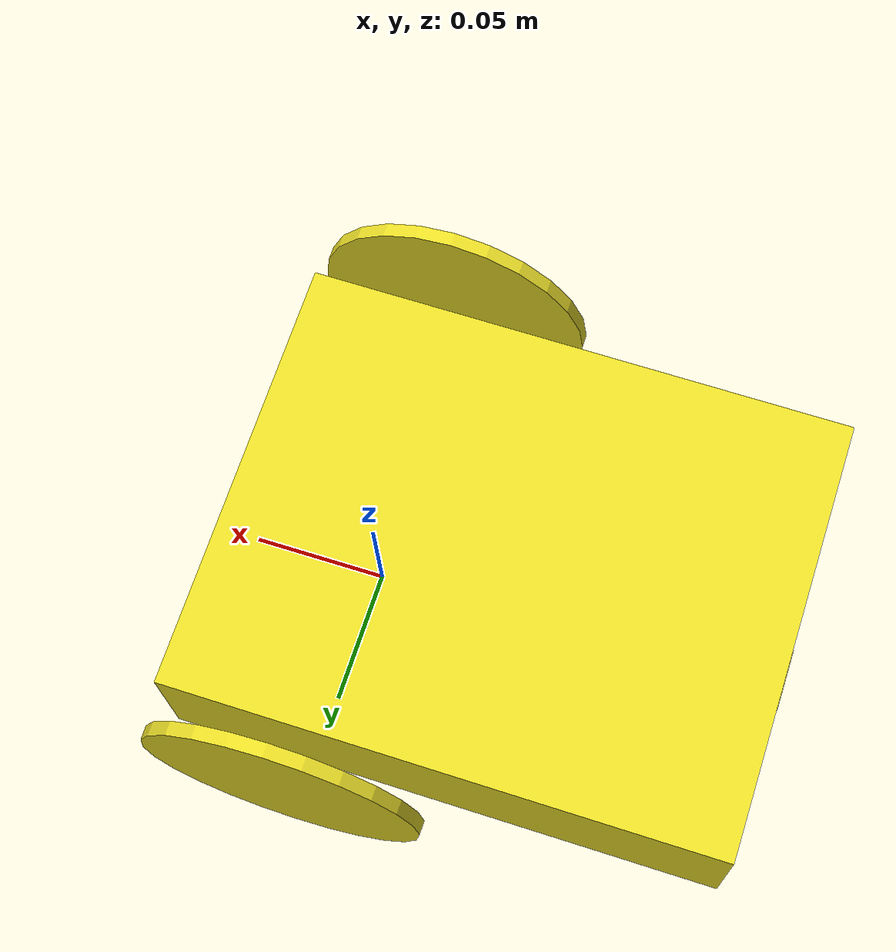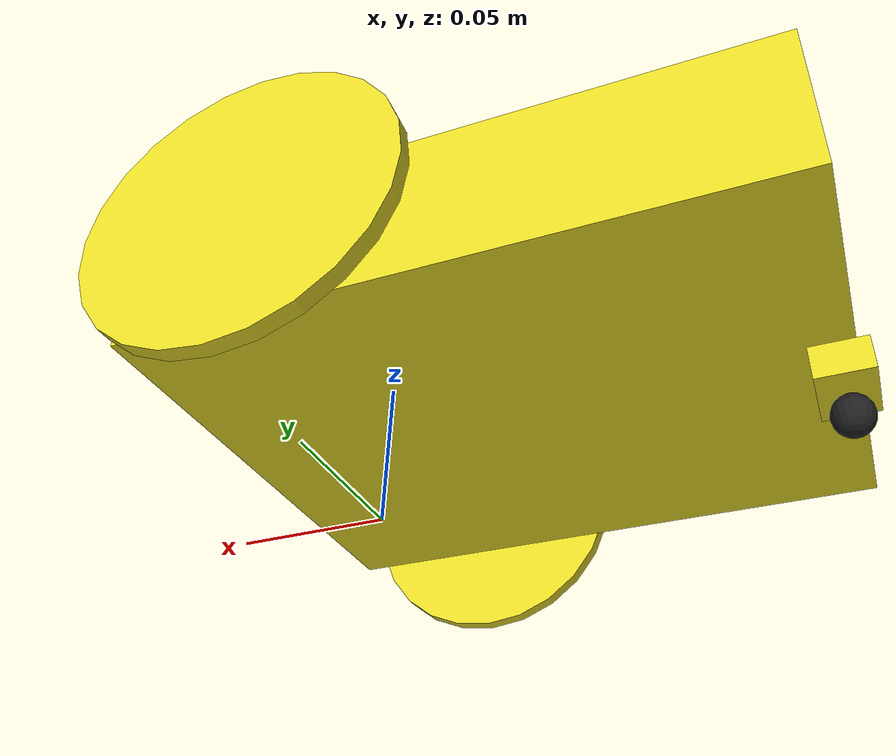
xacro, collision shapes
<?xml version="1.0"?>
<robot xmlns:xacro="http://www.ros.org/wiki/xacro" name="Puzzlebot_Hacker_Ed.">

<!-- files for gazebo costumization -->
<xacro:include filename="$(find puzzlebot_description)/urdf/hacker_ed/materials_hacker_ed.xacro" />
<xacro:include filename="$(find puzzlebot_description)/urdf/hacker_ed/parameters_hacker_ed_v1_3.xacro" />
<xacro:include filename="$(find puzzlebot_description)/urdf/hacker_ed/macros_hacker_ed.xacro" />
<xacro:include filename="$(find puzzlebot_description)/urdf/hacker_ed/puzzlebot_hacker_ed_v1_2.gazebo.xacro" />

<!--LINKS-->

<!-- Dummy link to fix robot chassis -->
    <link name="base_footprint">
    </link>

    <link name="base_link">
        <visual>
            <origin xyz="${chassis_mesh_pos_x} ${chassis_mesh_pos_y} ${chassis_mesh_pos_z}" rpy="${chassis_mesh_pos_r} ${chassis_mesh_pos_p} ${chassis_mesh_pos_w}"/>
            <geometry>
                <mesh filename="file://${mesh_puzzlebot_chassis}"/>
            </geometry>
            <material name="yellow"/>
        </visual>

        <collision>
            <origin xyz="${chassis_collision_pos_x} ${chassis_collision_pos_y} ${chassis_collision_pos_z}" rpy="${chassis_collision_pos_r} ${chassis_collision_pos_p} ${chassis_collision_pos_w}"/>
            <geometry>
                <box size="${chassis_length} ${chassis_width} ${chassis_height}"/>
            </geometry>
        </collision>

        <inertial>
            <origin xyz="-${chassis_inertia_pos_x} ${chassis_inertia_pos_y} ${chassis_inertia_pos_z}" rpy="${chassis_inertia_pos_r} ${chassis_inertia_pos_p} ${chassis_inertia_pos_w}"/>
            <mass value="${chassis_mass}"/>
            <xacro:box_inertia mass="${chassis_mass}" x="${chassis_length}" y="${chassis_width}" z="${chassis_height}" />
        </inertial>
    </link>

    <link name="wheel_left_link">
        <visual>
            <origin xyz="${wheel_mesh_pos_x} ${wheel_mesh_pos_y} ${wheel_mesh_pos_z}" rpy="${wheel_mesh_pos_r} ${wheel_mesh_pos_p} ${wheel_mesh_pos_w}" />
            <geometry>
                <mesh filename="file://${mesh_puzzlebot_wheel}"/>
            </geometry>
            <material name="yellow"/>
        </visual>

        <collision>
            <origin xyz="${wheel_collision_pos_x} ${wheel_collision_pos_y} ${wheel_collision_pos_z}" rpy="${wheel_collision_pos_r} ${wheel_collision_pos_p} ${wheel_collision_pos_w}"/>
            <geometry>
                <cylinder length="${wheel_height}" radius="${wheel_radius}" />
            </geometry>
        </collision>

        <inertial>
            <origin xyz="${wheel_inertia_pos_x} ${wheel_inertia_pos_y} ${wheel_inertia_pos_z}" rpy="${wheel_inertia_pos_r} ${wheel_inertia_pos_p} ${wheel_inertia_pos_w}"/>
            <mass value="${wheel_mass}"/>
            <xacro:cylinderical_tube_inertia r1="${wheel_radius}" r2="${wheel_radius/4.0}" height="${wheel_height}" mass="${wheel_mass}"/>
        </inertial>
    </link>

    <link name="wheel_right_link">
        <visual>
            <origin xyz="${wheel_mesh_pos_x} ${wheel_mesh_pos_y} ${wheel_mesh_pos_z}" rpy="${wheel_mesh_pos_r} -${wheel_mesh_pos_p} ${wheel_mesh_pos_w}" />
            <geometry>
                <mesh filename="file://${mesh_puzzlebot_wheel}"/>
            </geometry>
            <material name="yellow"/>
        </visual>

        <collision>
            <origin xyz="${wheel_collision_pos_x} ${wheel_collision_pos_y} ${wheel_collision_pos_z}" rpy="-${wheel_collision_pos_r} ${wheel_collision_pos_p} ${wheel_collision_pos_w}"/>
            <geometry>
                <cylinder length="${wheel_height}" radius="${wheel_radius}" />
            </geometry>
        </collision>

        <inertial>
            <origin xyz="${wheel_inertia_pos_x} ${wheel_inertia_pos_y} ${wheel_inertia_pos_z}" rpy="-${wheel_inertia_pos_r} ${wheel_inertia_pos_p} ${wheel_inertia_pos_w}"/>
            <mass value="${wheel_mass}"/>
            <xacro:cylinderical_tube_inertia r1="${wheel_radius}" r2="${wheel_radius/4.0}" height="${wheel_height}" mass="${wheel_mass}"/>
        </inertial>
    </link>

    <link name="caster_holder_link">
        <visual>
            <origin xyz="${casterholder_mesh_pos_x} ${casterholder_mesh_pos_y} ${casterholder_mesh_pos_z}" rpy="${casterholder_mesh_pos_r} ${casterholder_mesh_pos_p} ${casterholder_mesh_pos_w}"/>
            <geometry>
                <mesh filename="file://${mesh_puzzlebot_caster}"/>
            </geometry>
            <material name="yellow"/>
        </visual>

        <collision>
            <origin xyz="${casterholder_collision_pos_x} ${casterholder_collision_pos_y} ${casterholder_collision_pos_z}" rpy="${casterholder_collision_pos_r} ${casterholder_collision_pos_p} ${casterholder_collision_pos_w}"/>
            <geometry>
                <box size="${casterholder_length} ${casterholder_width} ${casterholder_height}"/>
            </geometry>
        </collision>

        <inertial>
            <origin xyz="${casterholder_inertia_pos_x} ${casterholder_inertia_pos_y} ${casterholder_inertia_pos_z}" rpy="${casterholder_inertia_pos_r} ${casterholder_inertia_pos_p} ${casterholder_inertia_pos_w}"/>
            <mass value="${casterholder_mass}"/>
            <xacro:box_inertia mass="${casterholder_mass}" x="${casterholder_length}" y="${casterholder_width}" z="${casterholder_height}" />
        </inertial>
    </link>

    <link name="wheel_caster_link">
        <collision>
            <origin xyz="${casterball_collision_pos_x} ${casterball_collision_pos_y} ${casterball_collision_pos_z}" rpy="${casterball_collision_pos_r} ${casterball_collision_pos_p} ${casterball_collision_pos_w}"/>
            <geometry>
                <sphere radius="${casterball_radius}"/>
            </geometry>
        </collision>

        <inertial>
            <origin xyz="${casterball_inertia_pos_x} ${casterball_inertia_pos_y} ${casterball_inertia_pos_z}" rpy="${casterball_inertia_pos_r} ${casterball_inertia_pos_p} ${casterball_inertia_pos_w}"/>
            <mass value="${casterball_mass}"/>
            <xacro:solid_sphere_inertia mass="${casterball_mass}" radius="${casterball_radius}" />
        </inertial>
    </link>

    <link name="motor_left_link">
        <visual>
            <origin xyz="${motor_mesh_pos_x} ${motor_mesh_pos_y} ${motor_mesh_pos_z}" rpy="${motor_mesh_pos_r} ${motor_mesh_pos_p} ${motor_mesh_pos_w}"/>
            <geometry>
                <mesh filename="file://${mesh_puzzlebot_motor_left}"/>
            </geometry>
            <material name="grey"/>
        </visual>

        <collision>
            <origin xyz="${motor_collision_pos_x} ${motor_collision_pos_y} ${motor_collision_pos_z}" rpy="${motor_collision_pos_r} ${motor_collision_pos_p} ${motor_collision_pos_w}"/>
            <geometry>
                <cylinder length="${motor_height}" radius="${motor_radius}" />
            </geometry>
        </collision>

        <inertial>
            <origin xyz="${motor_inertia_pos_x} ${motor_inertia_pos_y} ${motor_inertia_pos_z}" rpy="${motor_inertia_pos_r} ${motor_inertia_pos_p} ${motor_inertia_pos_w}"/>
            <mass value="${motor_mass}"/>
            <xacro:cylinder_inertia radius="${motor_radius}" height="${motor_height}" mass="${motor_mass}"/>
        </inertial>
    </link>

    <link name="motor_right_link">
        <visual>
            <origin xyz="${motor_mesh_pos_x} -${motor_mesh_pos_y} ${motor_mesh_pos_z}" rpy="${motor_mesh_pos_r} ${-motor_mesh_pos_p} ${motor_mesh_pos_w+PI}"/>
            <geometry>
                <mesh filename="file://${mesh_puzzlebot_motor_right}"/>
            </geometry>
            <material name="grey"/>
        </visual>

        <collision>
            <origin xyz="${motor_collision_pos_x} ${motor_collision_pos_y} ${motor_collision_pos_z}" rpy="${motor_collision_pos_r} ${motor_collision_pos_p} ${motor_collision_pos_w}"/>
            <geometry>
                <cylinder length="${motor_height}" radius="${motor_radius}" />
            </geometry>
        </collision>

        <inertial>
            <origin xyz="${motor_inertia_pos_x} -${motor_inertia_pos_y} ${motor_inertia_pos_z}" rpy="${motor_inertia_pos_r} ${motor_inertia_pos_p} ${motor_inertia_pos_w}"/>
            <mass value="${motor_mass}"/>
            <xacro:cylinder_inertia radius="${motor_radius}" height="${motor_height}" mass="${motor_mass}"/>
        </inertial>
    </link>

    <link name="powerbank_link">
        <visual>
            <origin xyz="${powerbank_mesh_pos_x} ${powerbank_mesh_pos_y} ${powerbank_mesh_pos_z}" rpy="${powerbank_mesh_pos_r} ${powerbank_mesh_pos_p} ${powerbank_mesh_pos_w}"/>
            <geometry>
                <mesh filename="file://${mesh_puzzlebot_battery}"/>
            </geometry>
            <material name="black"/>
        </visual>

        <collision>
            <origin xyz="${powerbank_collision_pos_x} ${powerbank_collision_pos_y} ${powerbank_collision_pos_z}" rpy="${powerbank_collision_pos_r} ${powerbank_collision_pos_p} ${powerbank_collision_pos_w}"/>
            <geometry>
                <box size="${powerbank_length} ${powerbank_width} ${powerbank_height}"/>
            </geometry>
        </collision>

        <inertial>
            <origin xyz="${powerbank_inertia_pos_x} ${powerbank_inertia_pos_y} ${powerbank_inertia_pos_z}" rpy="${powerbank_inertia_pos_r} ${powerbank_inertia_pos_p} ${powerbank_inertia_pos_w}"/>
            <mass value="${powerbank_mass}"/>
            <xacro:box_inertia mass="${powerbank_mass}" x="${powerbank_length}" y="${powerbank_width}" z="${powerbank_height}" />
        </inertial>
    </link>

<!--JOINTS-->

    <joint name="chassis_joint" type="fixed">
        <parent link="base_footprint"/>
        <child link="base_link"/>
        <origin xyz="${chassis_pos_x} ${chassis_pos_y} ${chassis_pos_z}" rpy="${chassis_pos_r} ${chassis_pos_p} ${chassis_pos_w}"/>
    </joint>

    <joint name="motor_left_joint" type="fixed">
        <parent link="base_link"/>
        <child link="motor_left_link"/>
        <origin xyz="${motor_pos_x} ${motor_pos_y} ${motor_pos_z}" rpy="${motor_pos_r} ${motor_pos_p} ${motor_pos_w}"/>
    </joint>

    <joint name="motor_right_joint" type="fixed">
        <parent link="base_link"/>
        <child link="motor_right_link"/>
        <origin xyz="${motor_pos_x} -${motor_pos_y} ${motor_pos_z}" rpy="${motor_pos_r} ${motor_pos_p} ${motor_pos_w}"/>
    </joint>

    <joint name="powerbank_joint" type="fixed">
        <parent link="base_link"/>
        <child link="powerbank_link"/>
        <origin xyz="-${powerbank_pos_x} ${powerbank_pos_y} -${powerbank_pos_z}" rpy="${powerbank_pos_r} ${powerbank_pos_p} ${powerbank_pos_w}"/>
    </joint>

    <joint name="wheel_right_joint" type="continuous">
        <parent link="base_link"/>
        <child link="wheel_right_link"/>
        <origin xyz="${wheel_pos_x} -${wheel_pos_y} ${wheel_pos_z}" rpy="-${wheel_pos_r} ${wheel_pos_p} ${wheel_pos_w}"/>
        <axis xyz="0 0 1"/>
    </joint>

    <joint name="wheel_left_joint" type="continuous">
        <parent link="base_link"/>
        <child link="wheel_left_link"/>
        <origin xyz="${wheel_pos_x} ${wheel_pos_y} ${wheel_pos_z}" rpy="-${wheel_pos_r} ${wheel_pos_p} ${wheel_pos_w}"/>
        <axis xyz="0 0 1"/>
    </joint>

    <joint name="caster_holder_joint" type="fixed">
        <parent link="base_link"/>
        <child link="caster_holder_link"/>
        <origin xyz="${casterholder_pos_x} ${casterholder_pos_y} ${casterholder_pos_z}" rpy="${casterholder_pos_r} ${casterholder_pos_p} ${casterholder_pos_w}"/>
    </joint>

    <joint name="wheel_caster_joint" type="fixed">
        <parent link="caster_holder_link"/>
        <child link="wheel_caster_link"/>
        <origin xyz="${casterball_pos_x} ${casterball_pos_y} ${casterball_pos_z}" rpy="${casterball_pos_r} ${casterball_pos_p} ${casterball_pos_w}"/>
    </joint>

<!--TRANSMISSIONS-->

<!-- TRANSMISSIONS (For a more complex model and it represents actuator attributes) -->
<transmission name="wheel_right_trans">
    <type>transmission_interface/SimpleTransmission</type>
    <joint name="wheel_right_joint">
    	<hardwareInterface>hardware_interface/VelocityJointInterface</hardwareInterface>
    </joint>
    <actuator name="wheel_right_motor">
      <hardwareInterface>VelocityJointInterface</hardwareInterface>
      <mechanicalReduction>34</mechanicalReduction>
    </actuator>
  </transmission>

<transmission name="wheel_left_trans">
    <type>transmission_interface/SimpleTransmission</type>
    <joint name="wheel_left_joint">
    	<hardwareInterface>hardware_interface/VelocityJointInterface</hardwareInterface>
    </joint>
    <actuator name="wheel_left_motor">
      <hardwareInterface>VelocityJointInterface</hardwareInterface>
      <mechanicalReduction>34</mechanicalReduction>
    </actuator>
</transmission>

</robot>

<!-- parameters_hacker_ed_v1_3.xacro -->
<robot xmlns:xacro="http://www.ros.org/wiki/xacro">

    <!--General parameters-->
    <xacro:property name="PI" value="3.1415926535897931"/>

    <!--Puzzlebot parameters-->
        <!--General parameters-->
            <xacro:property name="wheel_base_distance" value="0.19"/>

    <!--Chassis-->
        <!--Chassis Inertial/Collision parameters-->
            <xacro:property name="chassis_mass" value="0.351"/>
            <xacro:property name="chassis_length" value="0.2"/>
            <xacro:property name="chassis_width" value="0.16"/>
            <xacro:property name="chassis_height" value="0.0503"/>

            <xacro:property name="chassis_inertia_pos_x" value="0.00"/>
            <xacro:property name="chassis_inertia_pos_y" value="0.0"/>
            <xacro:property name="chassis_inertia_pos_z" value="0.00"/>
            <xacro:property name="chassis_inertia_pos_r" value="0.00"/>
            <xacro:property name="chassis_inertia_pos_p" value="0.0"/>
            <xacro:property name="chassis_inertia_pos_w" value="0.0"/>

            <xacro:property name="chassis_collision_pos_x" value="0.0"/>
            <xacro:property name="chassis_collision_pos_y" value="0.0"/>
            <xacro:property name="chassis_collision_pos_z" value="0.0"/>
            <xacro:property name="chassis_collision_pos_r" value="0.0"/>
            <xacro:property name="chassis_collision_pos_p" value="0.0"/>
            <xacro:property name="chassis_collision_pos_w" value="0.0"/>

        <!--Chassis Visual parameters-->
            <xacro:property name="chassis_mesh_pos_x" value="0.0"/>
            <xacro:property name="chassis_mesh_pos_y" value="0.0"/>
            <xacro:property name="chassis_mesh_pos_z" value="0.0"/>
            <xacro:property name="chassis_mesh_pos_r" value="${PI/2}"/>
            <xacro:property name="chassis_mesh_pos_p" value="0.0"/>
            <xacro:property name="chassis_mesh_pos_w" value="${PI/2}"/>

        <!--Chassis Joint parameters-->
            <xacro:property name="chassis_pos_x" value="-0.052"/>
            <xacro:property name="chassis_pos_y" value="0.0"/>
            <xacro:property name="chassis_pos_z" value="0.05"/>
            <xacro:property name="chassis_pos_r" value="0.0"/>
            <xacro:property name="chassis_pos_p" value="0.0"/>
            <xacro:property name="chassis_pos_w" value="0.0"/>

    <!--Caster Holder-->
        <!--Caster Holder Inertial/Collision parameters-->
            <xacro:property name="casterholder_mass" value="0.007"/>
            <xacro:property name="casterholder_length" value="0.0175"/>
            <xacro:property name="casterholder_width" value="0.023"/>
            <xacro:property name="casterholder_height" value="0.011150"/>

            <xacro:property name="casterholder_inertia_pos_x" value="0.0"/>
            <xacro:property name="casterholder_inertia_pos_y" value="0.0"/>
            <xacro:property name="casterholder_inertia_pos_z" value="0.0"/>
            <xacro:property name="casterholder_inertia_pos_r" value="0.0"/>
            <xacro:property name="casterholder_inertia_pos_p" value="0.0"/>
            <xacro:property name="casterholder_inertia_pos_w" value="0.0"/>

            <xacro:property name="casterholder_collision_pos_x" value="0.0"/>
            <xacro:property name="casterholder_collision_pos_y" value="0.0"/>
            <xacro:property name="casterholder_collision_pos_z" value="0.0"/>
            <xacro:property name="casterholder_collision_pos_r" value="0.0"/>
            <xacro:property name="casterholder_collision_pos_p" value="0.0"/>
            <xacro:property name="casterholder_collision_pos_w" value="0.0"/>

        <!--Caster Holder Visual parameters-->
            <xacro:property name="casterholder_mesh_pos_x" value="0.0"/>
            <xacro:property name="casterholder_mesh_pos_y" value="0.0"/>
            <xacro:property name="casterholder_mesh_pos_z" value="-0.0065"/>
            <xacro:property name="casterholder_mesh_pos_r" value="0.0"/>
            <xacro:property name="casterholder_mesh_pos_p" value="0.0"/>
            <xacro:property name="casterholder_mesh_pos_w" value="0.0"/>

        <!--Caster Holder Joint parameters-->
            <xacro:property name="casterholder_pos_x" value="-0.095"/>
            <xacro:property name="casterholder_pos_y" value="0.0"/>
            <xacro:property name="casterholder_pos_z" value="-0.030725"/>
            <xacro:property name="casterholder_pos_r" value="0.0"/>
            <xacro:property name="casterholder_pos_p" value="0.0"/>
            <xacro:property name="casterholder_pos_w" value="0.0"/>

    <!--Caster Ball-->
        <!--Caster Ball Inertial/Collision parameters-->
            <xacro:property name="casterball_mass" value="0.009"/>
            <xacro:property name="casterball_radius" value="0.0065"/>

            <xacro:property name="casterball_inertia_pos_x" value="0.0"/>
            <xacro:property name="casterball_inertia_pos_y" value="0.0"/>
            <xacro:property name="casterball_inertia_pos_z" value="0.0"/>
            <xacro:property name="casterball_inertia_pos_r" value="0.0"/>
            <xacro:property name="casterball_inertia_pos_p" value="0.0"/>
            <xacro:property name="casterball_inertia_pos_w" value="0.0"/>

            <xacro:property name="casterball_collision_pos_x" value="0.0"/>
            <xacro:property name="casterball_collision_pos_y" value="0.0"/>
            <xacro:property name="casterball_collision_pos_z" value="0.0"/>
            <xacro:property name="casterball_collision_pos_r" value="0.0"/>
            <xacro:property name="casterball_collision_pos_p" value="0.0"/>
            <xacro:property name="casterball_collision_pos_w" value="0.0"/>

        <!--Caster Ball Visual parameters-->
            <xacro:property name="casterball_mesh_pos_x" value="0.0"/>
            <xacro:property name="casterball_mesh_pos_y" value="0.0"/>
            <xacro:property name="casterball_mesh_pos_z" value="0.0"/>
            <xacro:property name="casterball_mesh_pos_r" value="0.0"/>
            <xacro:property name="casterball_mesh_pos_p" value="0.0"/>
            <xacro:property name="casterball_mesh_pos_w" value="0.0"/>

        <!--Caster Ball Joint parameters-->
            <xacro:property name="casterball_pos_x" value="0.0"/>
            <xacro:property name="casterball_pos_y" value="0.0"/>
            <xacro:property name="casterball_pos_z" value="-0.012538"/>
            <xacro:property name="casterball_pos_r" value="0.0"/>
            <xacro:property name="casterball_pos_p" value="0.0"/>
            <xacro:property name="casterball_pos_w" value="0.0"/>

    <!--Wheel-->
        <!--Wheel Inertial/Collision parameters-->
            <xacro:property name="wheel_mass" value="0.027"/>
            <xacro:property name="wheel_height" value="0.005"/>
            <xacro:property name="wheel_radius" value="0.05"/>

            <xacro:property name="wheel_inertia_pos_x" value="0.0"/>
            <xacro:property name="wheel_inertia_pos_y" value="0.0"/>
            <xacro:property name="wheel_inertia_pos_z" value="0.0"/>
            <xacro:property name="wheel_inertia_pos_r" value="0.0"/>
            <xacro:property name="wheel_inertia_pos_p" value="0.0"/>
            <xacro:property name="wheel_inertia_pos_w" value="0.0"/>

            <xacro:property name="wheel_collision_pos_x" value="0.0"/>
            <xacro:property name="wheel_collision_pos_y" value="0.0"/>
            <xacro:property name="wheel_collision_pos_z" value="0.0"/>
            <xacro:property name="wheel_collision_pos_r" value="0.0"/>
            <xacro:property name="wheel_collision_pos_p" value="0.0"/>
            <xacro:property name="wheel_collision_pos_w" value="0.0"/>

        <!--Wheel Visual parameters-->
            <xacro:property name="wheel_mesh_pos_x" value="0.0"/>
            <xacro:property name="wheel_mesh_pos_y" value="0.0"/>
            <xacro:property name="wheel_mesh_pos_z" value="0.0"/>
            <xacro:property name="wheel_mesh_pos_r" value="0.0"/>
            <xacro:property name="wheel_mesh_pos_p" value="${PI/2}"/>
            <xacro:property name="wheel_mesh_pos_w" value="0.0"/>

        <!--Wheel Joint parameters-->
            <xacro:property name="wheel_pos_x" value="0.052"/>
            <xacro:property name="wheel_pos_y" value="${wheel_base_distance/2}"/>
            <xacro:property name="wheel_pos_z" value="0.0"/>
            <xacro:property name="wheel_pos_r" value="${PI/2}"/>
            <xacro:property name="wheel_pos_p" value="0.0"/>
            <xacro:property name="wheel_pos_w" value="0.0"/>

    <!--Motor-->
        <!--Motor Inertial/Collision parameters-->
            <xacro:property name="motor_mass" value="0.1"/>
            <xacro:property name="motor_height" value="0.06645"/>
            <xacro:property name="motor_radius" value="0.0125"/>

            <xacro:property name="motor_inertia_pos_x" value="0.0"/>
            <xacro:property name="motor_inertia_pos_y" value="0.00825"/>
            <xacro:property name="motor_inertia_pos_z" value="0.0"/>
            <xacro:property name="motor_inertia_pos_r" value="${PI/2}"/>
            <xacro:property name="motor_inertia_pos_p" value="0.0"/>
            <xacro:property name="motor_inertia_pos_w" value="0.0"/>

            <xacro:property name="motor_collision_pos_x" value="0.0"/>
            <xacro:property name="motor_collision_pos_y" value="0.0"/>
            <xacro:property name="motor_collision_pos_z" value="0.0"/>
            <xacro:property name="motor_collision_pos_r" value="${PI/2}"/>
            <xacro:property name="motor_collision_pos_p" value="0.0"/>
            <xacro:property name="motor_collision_pos_w" value="0.0"/>

        <!--Motor Visual parameters-->
            <xacro:property name="motor_mesh_pos_x" value="0.0"/>
            <xacro:property name="motor_mesh_pos_y" value="0.009"/>
            <xacro:property name="motor_mesh_pos_z" value="0.0"/>
            <xacro:property name="motor_mesh_pos_r" value="0.0"/>
            <xacro:property name="motor_mesh_pos_p" value="0.0"/>
            <xacro:property name="motor_mesh_pos_w" value="${PI/2}"/>

        <!--Motor Joint parameters-->
            <xacro:property name="motor_pos_x" value="0.052"/>
            <xacro:property name="motor_pos_y" value="0.038775"/>
            <xacro:property name="motor_pos_z" value="0.0"/>
            <xacro:property name="motor_pos_r" value="0.0"/>
            <xacro:property name="motor_pos_p" value="0.0"/>
            <xacro:property name="motor_pos_w" value="0.0"/>

    <!--Powerbank-->
        <!--Powerbank Inertial/Collision parameters-->
            <xacro:property name="powerbank_mass" value="0.203"/>
            <xacro:property name="powerbank_length" value="0.13"/>
            <xacro:property name="powerbank_width" value="0.07"/>
            <xacro:property name="powerbank_height" value="0.012"/>

            <xacro:property name="powerbank_inertia_pos_x" value="0.0"/>
            <xacro:property name="powerbank_inertia_pos_y" value="0.0"/>
            <xacro:property name="powerbank_inertia_pos_z" value="0.0"/>
            <xacro:property name="powerbank_inertia_pos_r" value="0.0"/>
            <xacro:property name="powerbank_inertia_pos_p" value="0.0"/>
            <xacro:property name="powerbank_inertia_pos_w" value="0.0"/>

            <xacro:property name="powerbank_collision_pos_x" value="0.0"/>
            <xacro:property name="powerbank_collision_pos_y" value="0.0"/>
            <xacro:property name="powerbank_collision_pos_z" value="0.0"/>
            <xacro:property name="powerbank_collision_pos_r" value="0.0"/>
            <xacro:property name="powerbank_collision_pos_p" value="0.0"/>
            <xacro:property name="powerbank_collision_pos_w" value="0.0"/>

        <!--Powerbank Visual parameters-->
            <xacro:property name="powerbank_mesh_pos_x" value="0.0"/>
            <xacro:property name="powerbank_mesh_pos_y" value="0.0"/>
            <xacro:property name="powerbank_mesh_pos_z" value="0.0"/>
            <xacro:property name="powerbank_mesh_pos_r" value="${PI/2}"/>
            <xacro:property name="powerbank_mesh_pos_p" value="0.0"/>
            <xacro:property name="powerbank_mesh_pos_w" value="${PI/2}"/>

        <!--Powerbank Joint parameters-->
            <xacro:property name="powerbank_pos_x" value="0.03"/>
            <xacro:property name="powerbank_pos_y" value="0.00"/>
            <xacro:property name="powerbank_pos_z" value="0.01415"/>
            <xacro:property name="powerbank_pos_r" value="0.0"/>
            <xacro:property name="powerbank_pos_p" value="0.0"/>
            <xacro:property name="powerbank_pos_w" value="0.0"/>

    <!--Meshes -->
        <xacro:property name="mesh_puzzlebot_chassis"  value="$(find puzzlebot_description)/meshes/bases/MCR2_puzzlebot_chassis_v1_2.stl" />
        <xacro:property name="mesh_puzzlebot_motor_left"  value="$(find puzzlebot_description)/meshes/misc/MCR2_dc_motor_left.stl" />
        <xacro:property name="mesh_puzzlebot_motor_right"  value="$(find puzzlebot_description)/meshes/misc/MCR2_dc_motor_right.stl" />
        <xacro:property name="mesh_puzzlebot_wheel"  value="$(find puzzlebot_description)/meshes/wheels/MCR2_puzzlebot_wheel.stl" />
        <xacro:property name="mesh_puzzlebot_caster"  value="$(find puzzlebot_description)/meshes/wheels/MCR2_puzzlebot_casterball.stl" />
        <xacro:property name="mesh_puzzlebot_battery"  value="$(find puzzlebot_description)/meshes/misc/MCR2_puzzlebot_battery.stl" />

</robot>
